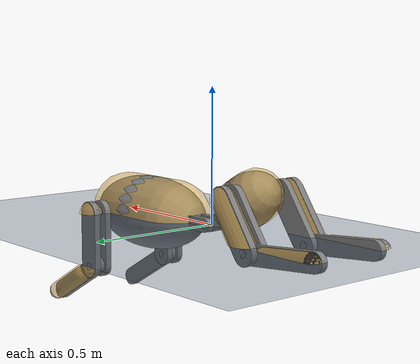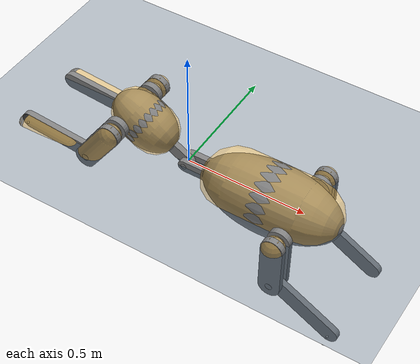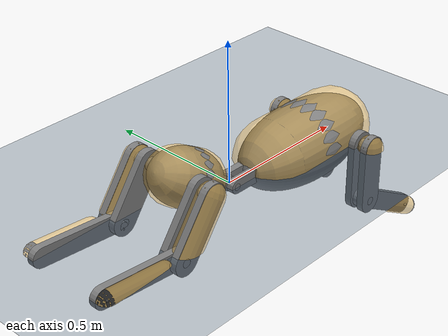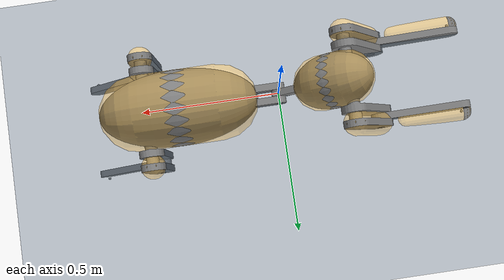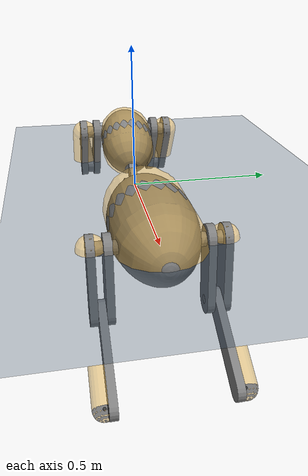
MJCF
<mujoco model="cheetah">
  <compiler angle="radian" meshdir="meshes/" inertiafromgeom="false"/>

  <statistic center="0 0 0.1" extent="0.8"/>

  <visual>
    <headlight diffuse="0.6 0.6 0.6" ambient="0.3 0.3 0.3" specular="0 0 0"/>
    <rgba haze="0.15 0.25 0.35 1"/>
    <global azimuth="120" elevation="-20"/>
  </visual>

  <default>
    <geom group="2" contype="0" conaffinity="0" type="mesh"/>
    <default class="cheetah/collision">
      <geom group="0" contype="1" conaffinity="1" material="collision"/>
    </default>
    <default class="cheetah/foot">
      <geom group="1" type="sphere" size="0.035" solimp="0.015 1 0.031" friction="0.8 0.02 0.01" material="contact"/>
    </default>
    <general forcerange="-18 18" biastype="affine" gainprm="50 0 0" biasprm="0 -50 -0.5"/>
  </default>

  <asset>
    <mesh name="base" file="base.STL"/>
    <mesh name="fl_hip" file="fl_hip.STL"/>
    <mesh name="fl_knee" file="fl_knee.STL"/>
    <mesh name="fr_hip" file="fr_hip.STL"/>
    <mesh name="fr_knee" file="fr_knee.STL"/>
    <mesh name="spine" file="spine.STL"/>
    <mesh name="bl_hip" file="bl_hip.STL"/>
    <mesh name="bl_knee" file="bl_knee.STL"/>
    <mesh name="br_hip" file="br_hip.STL"/>
    <mesh name="br_knee" file="br_knee.STL"/>
    <texture type="skybox" builtin="gradient" rgb1="0.3 0.5 0.7" rgb2="0 0 0" width="512" height="3072"/>
    <texture type="2d" name="groundplane" builtin="checker" mark="edge" rgb1="0.2 0.3 0.4" rgb2="0.1 0.2 0.3"
      markrgb="0.8 0.8 0.8" width="300" height="300"/>
    <material name="groundplane" texture="groundplane" texuniform="true" texrepeat="5 5" reflectance="0.2"/>
    <material name="collision" rgba="0.85 0.65 0.25 0.5"/>
    <material name="contact" rgba="0 0 0 0.5"/>
  </asset>

  <worldbody>
    <light pos="0 0 1.5" dir="0 0 -1" directional="true"/>
    <camera name="default" pos="0.846 -1.465 0.916" xyaxes="0.866 0.500 0.000 -0.171 0.296 0.940"/>
    <geom name="floor" size="0 0 0.05" type="plane" material="groundplane" group="0" contype="1" conaffinity="1"/>
    <body name="base">
      <inertial pos="0.36059 -3.5411e-08 2.6263e-08" quat="0.500003 0.500003 0.499997 0.499997" mass="4" diaginertia="0.086585 0.086267 0.031067"/>
      <joint name="floating_base_joint" type="free" limited="false" actuatorfrclimited="false"/>
      <geom type="mesh" mesh="base"/>
      <geom type="capsule" size="0.14" fromto="0.215 0 0 0.515 0 0" class="cheetah/collision"/>
      <site name="imu_frame" pos="0.485 0 0"/>
      <body name="fl_hip" pos="0.485 0.1775 0">
        <inertial pos="0 -0.0083713 -0.088755" quat="0.997892 0.0648985 0 0" mass="0.42319" diaginertia="0.0034493 0.00319477 0.000746558"/>
        <joint name="fl_hip_joint" pos="0 0 0" axis="0 1 0" damping="0.024" armature="0.011" range="-0.78 0.78"/>
        <geom type="mesh" mesh="fl_hip"/>
        <geom type="capsule" size="0.045" fromto="0 0.0225 0 0 0.0225 -0.21" class="cheetah/collision"/>
        <body name="fl_knee" pos="0 0 -0.21" quat="0.965926 0 0.25882 0">
          <inertial pos="0.13698 0 0" quat="0.5 0.5 0.5 0.5" mass="0.19172" diaginertia="0.0020898 0.0020349 8.8217e-05"/>
          <joint name="fl_knee_joint" pos="0 0 0" axis="0 1 0" damping="0.024" armature="0.011" range="-0.78 0.78"/>
          <geom type="mesh" mesh="fl_knee"/>
          <geom type="capsule" size="0.035" fromto="0.08 0.0225 0 0.29 0.0225 0" class="cheetah/collision"/>
          <body name="fl_foot" pos="0.29 0.0225 0">
            <inertial pos="0 0 0" mass="0.001" diaginertia="0.001 0.001 0.001"/>
            <geom class="cheetah/foot"/>
            <site name="fl_foot"/>
          </body>
        </body>
      </body>
      <body name="fr_hip" pos="0.485 -0.1775 0">
        <inertial pos="0 0.0083713 -0.088755" quat="0.997892 -0.0648985 0 0" mass="0.42319" diaginertia="0.0034493 0.00319477 0.000746558"/>
        <joint name="fr_hip_joint" pos="0 0 0" axis="0 1 0" damping="0.024" armature="0.011" range="-0.78 0.78"/>
        <geom type="mesh" mesh="fr_hip"/>
        <geom type="capsule" size="0.045" fromto="0 -0.0225 0 0 -0.0225 -0.21" class="cheetah/collision"/>
        <body name="fr_knee" pos="0 0 -0.21" quat="0.965926 0 0.25882 0">
          <inertial pos="0.13698 0 0" quat="0.5 0.5 0.5 0.5" mass="0.19172" diaginertia="0.0020898 0.0020349 8.8217e-05"/>
          <joint name="fr_knee_joint" pos="0 0 0" axis="0 1 0" damping="0.024" armature="0.011" range="-0.78 0.78"/>
          <geom type="mesh" mesh="fr_knee"/>
          <geom type="capsule" size="0.035" fromto="0.08 -0.0225 0 0.29 -0.0225 0" class="cheetah/collision"/>
          <body name="fr_foot" pos="0.29 -0.0225 0">
            <inertial pos="0 0 0" mass="0.001" diaginertia="0.001 0.001 0.001"/>
            <geom class="cheetah/foot"/>
            <site name="fr_foot"/>
          </body>
        </body>
      </body>
      <body name="spine" quat="0.965926 0 0.25882 0">
        <inertial pos="-0.21386 2.4147e-07 -3.6136e-08" quat="0.500007 0.499998 0.5 0.499994" mass="2.818" diaginertia="0.019596 0.019319 0.0104"/>
        <joint name="spine_joint" pos="0 0 0" axis="0 1 0" damping="0.024" armature="0.011" range="-0.78 0.78"/>
        <geom type="mesh" mesh="spine"/>
        <geom type="capsule" size="0.0975" fromto="-0.1725 0 0 -0.270 0 0" class="cheetah/collision"/>
        <body name="bl_hip" pos="-0.28023 0.1375 0" quat="0.999048 0 0.0436192 0">
          <inertial pos="-1.5467e-06 -0.0036898 -0.092943" quat="0.999589 0.0286807 1.42074e-05 -8.99596e-06" mass="0.40409" diaginertia="0.0030903 0.00299916 0.000578271"/>
          <joint name="bl_hip_joint" pos="0 0 0" axis="0 1 0" damping="0.024" armature="0.011" range="-0.78 0.78"/>
          <geom type="mesh" mesh="bl_hip"/>
          <geom type="capsule" size="0.045" fromto="0 0.0225 0 0 0.0225 -0.21" class="cheetah/collision"/>
          <body name="bl_knee" pos="0 0 -0.21" quat="0.965926 0 -0.25882 0">
            <inertial pos="-0.136981 0 0" quat="0.5 0.5 0.5 0.5" mass="0.191716" diaginertia="0.00208985 0.00203485 8.82166e-05"/>
            <joint name="bl_knee_joint" pos="0 0 0" axis="0 1 0" damping="0.024" armature="0.011" range="-0.78 0.78"/>
            <geom type="mesh" mesh="bl_knee"/>
            <geom type="capsule" size="0.035" fromto="-0.08 0.0225 0 -0.29 0.0225 0" class="cheetah/collision"/>
            <body name="bl_foot" pos="-0.29 0.0225 0">
              <inertial pos="0 0 0" mass="0.001" diaginertia="0.001 0.001 0.001"/>
              <geom class="cheetah/foot"/>
              <site name="bl_foot"/>
            </body>
          </body>
        </body>
        <body name="br_hip" pos="-0.28023 -0.1375 0" quat="0.999048 0 0.0436192 0">
          <inertial pos="0 0.00368968 -0.092947" quat="0.999589 -0.0286799 0 0" mass="0.404108" diaginertia="0.00309049 0.00299939 0.00057831"/>
          <joint name="br_hip_joint" pos="0 0 0" axis="0 1 0" damping="0.024" armature="0.011" range="-0.78 0.78"/>
          <geom type="mesh" mesh="br_hip"/>
          <geom type="capsule" size="0.045" fromto="0 -0.0225 0 0 -0.0225 -0.21" class="cheetah/collision"/>
          <body name="br_knee" pos="0 0 -0.21" quat="0.965926 0 -0.25882 0">
            <inertial pos="-0.136981 0 0" quat="0.5 0.5 0.5 0.5" mass="0.191716" diaginertia="0.00208985 0.00203485 8.82166e-05"/>
            <joint name="br_knee_joint" pos="0 0 0" axis="0 1 0" damping="0.024" armature="0.011" range="-0.78 0.78"/>
            <geom type="mesh" mesh="br_knee"/>
            <geom type="capsule" size="0.035" fromto="-0.08 -0.0225 0 -0.29 -0.0225 0" class="cheetah/collision"/>
            <body name="br_foot" pos="-0.29 -0.0225 0">
              <inertial pos="0 0 0" mass="0.001" diaginertia="0.001 0.001 0.001"/>
              <geom class="cheetah/foot"/>
              <site name="br_foot"/>
            </body>
          </body>
        </body>
      </body>
    </body>
  </worldbody>

  <actuator>
    <general name="fl_hip_act" joint="fl_hip_joint"/>
    <general name="fl_knee_act" joint="fl_knee_joint"/>
    <general name="fr_hip_act" joint="fr_hip_joint"/>
    <general name="fr_knee_act" joint="fr_knee_joint"/>
    <general name="spine_act" joint="spine_joint"/>
    <general name="bl_hip_act" joint="bl_hip_joint"/>
    <general name="bl_knee_act" joint="bl_knee_joint"/>
    <general name="br_hip_act" joint="br_hip_joint"/>
    <general name="br_knee_act" joint="br_knee_joint"/>
  </actuator>

  <sensor>
    <jointpos joint="fl_hip_joint" name="fl_hip_pos"/>
    <jointpos joint="fl_knee_joint" name="fl_knee_pos"/>
    <jointpos joint="fr_hip_joint" name="fr_hip_pos"/>
    <jointpos joint="fr_knee_joint" name="fr_knee_pos"/>
    <jointpos joint="spine_joint" name="spine_pos"/>
    <jointpos joint="bl_hip_joint" name="bl_hip_pos"/>
    <jointpos joint="bl_knee_joint" name="bl_knee_pos"/>
    <jointpos joint="br_hip_joint" name="br_hip_pos"/>
    <jointpos joint="br_knee_joint" name="br_knee_pos"/>
    <jointvel joint="fl_hip_joint" name="fl_hip_vel"/>
    <jointvel joint="fl_knee_joint" name="fl_knee_vel"/>
    <jointvel joint="fr_hip_joint" name="fr_hip_vel"/>
    <jointvel joint="fr_knee_joint" name="fr_knee_vel"/>
    <jointvel joint="spine_joint" name="spine_vel"/>
    <jointvel joint="bl_hip_joint" name="bl_hip_vel"/>
    <jointvel joint="bl_knee_joint" name="bl_knee_vel"/>
    <jointvel joint="br_hip_joint" name="br_hip_vel"/>
    <jointvel joint="br_knee_joint" name="br_knee_vel"/>
    <gyro site="imu_frame" name="gyro"/>
    <velocimeter site="imu_frame" name="local_linvel"/>
    <accelerometer site="imu_frame" name="accelerometer"/>
    <framepos objtype="site" objname="imu_frame" name="global_position"/>
    <framezaxis objtype="site" objname="imu_frame" name="upvector"/>
    <framelinvel objtype="site" objname="imu_frame" name="global_linvel"/>
    <frameangvel objtype="site" objname="imu_frame" name="global_angvel"/>
    <framequat objtype="site" objname="imu_frame" name="orientation"/>
  </sensor>

  <keyframe>
    <key name="home"
      qpos="0 0 0.39
            1 0 0 0
            0 0
            0 0
            -0.52
            0 -0.1
            0 -0.1"
      ctrl="0.15 0.3
            0.15 0.3
            -0.8
            0.1 -0.2
            0.1 -0.2"/>
  </keyframe>
</mujoco>
